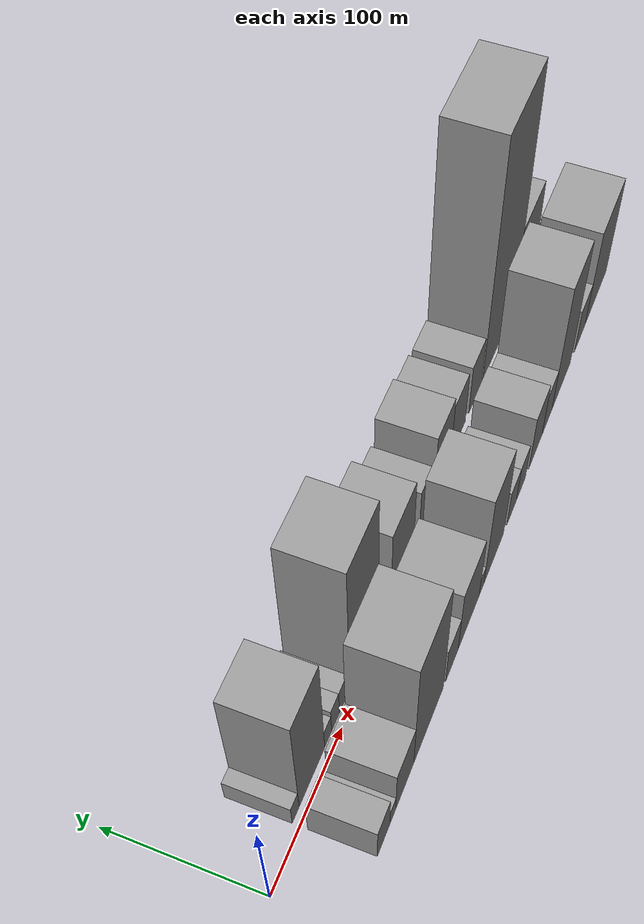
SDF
<sdf version="1.6">
 <world name="default">
  <scene>
   <sky><clouds><speed>12</speed></clouds></sky>
   <ambient>0.4 0.4 0.4 1</ambient>
   <background>0.7 0.7 0.7 1</background>
   <shadows>1</shadows>
  </scene>
  <gravity>0 0 -9.8066</gravity>
  <magnetic_field>6e-06 2.3e-05 -4.2e-05</magnetic_field>
  <physics default="0" name="default_physics" type="ode">
   <ode>
    <solver>
     <type>quick</type>
     <iters>10</iters>
     <sor>1.0</sor>
     <use_dynamic_moi_rescaling>0</use_dynamic_moi_rescaling>
    </solver>
    <constraints>
     <cfm>0</cfm>
     <erp>0.2</erp>
     <contact_max_correcting_vel>100</contact_max_correcting_vel>
     <contact_surface_layer>0.001</contact_surface_layer>
    </constraints>
   </ode>
   <max_step_size>0.004</max_step_size>
   <real_time_factor>1</real_time_factor>
   <real_time_update_rate>250</real_time_update_rate>
  </physics>
  <light name="sun" type="directional">
   <pose>0 0 10 0 0 0</pose>
   <diffuse>0.8 0.8 0.8 1</diffuse>
   <specular>0.2 0.2 0.2 1</specular>
   <attenuation>
    <range>1000</range>
    <constant>0.9</constant>
    <linear>0.01</linear>
    <quadratic>0.001</quadratic>
   </attenuation>
   <direction>-0.5 0.1 -0.9</direction>
  </light>
  <model name="building_1">
   <static>1</static>
   <pose>44.8258 24.5000 0 0.000000 0.000000 1.570796</pose>
   <link name="link">
    <pose>0 0 10.50 0 0 0</pose>
    <collision name="collision"><geometry><box><size>40.0000 9.6516 21.0000</size></box></geometry></collision>
    <visual name="visual">
     <cast_shadows>0</cast_shadows>
     <geometry><box><size>40.0000 9.6516 21.0000</size></box></geometry>
     <material>
      <script>
       <uri>model://grey_wall/materials/scripts</uri>
       <uri>model://grey_wall/materials/textures</uri>
       <name>vrc/grey_wall</name>
      </script>
     </material>
    </visual>
   </link>
  </model>
  <model name="building_2">
   <static>1</static>
   <pose>67.6785 24.5000 0 0.000000 0.000000 1.570796</pose>
   <link name="link">
    <pose>0 0 54.00 0 0 0</pose>
    <collision name="collision"><geometry><box><size>40.0000 36.0537 108.0000</size></box></geometry></collision>
    <visual name="visual">
     <cast_shadows>0</cast_shadows>
     <geometry><box><size>40.0000 36.0537 108.0000</size></box></geometry>
     <material>
      <script>
       <uri>model://grey_wall/materials/scripts</uri>
       <uri>model://grey_wall/materials/textures</uri>
       <name>vrc/grey_wall</name>
      </script>
     </material>
    </visual>
   </link>
  </model>
  <model name="building_3">
   <static>1</static>
   <pose>90.7869 24.5000 0 0.000000 0.000000 1.570796</pose>
   <link name="link">
    <pose>0 0 10.50 0 0 0</pose>
    <collision name="collision"><geometry><box><size>40.0000 10.1631 21.0000</size></box></geometry></collision>
    <visual name="visual">
     <cast_shadows>0</cast_shadows>
     <geometry><box><size>40.0000 10.1631 21.0000</size></box></geometry>
     <material>
      <script>
       <uri>model://grey_wall/materials/scripts</uri>
       <uri>model://grey_wall/materials/textures</uri>
       <name>vrc/grey_wall</name>
      </script>
     </material>
    </visual>
   </link>
  </model>
  <model name="building_4">
   <static>1</static>
   <pose>101.6792 24.5000 0 0.000000 0.000000 1.570796</pose>
   <link name="link">
    <pose>0 0 13.50 0 0 0</pose>
    <collision name="collision"><geometry><box><size>40.0000 11.6215 27.0000</size></box></geometry></collision>
    <visual name="visual">
     <cast_shadows>0</cast_shadows>
     <geometry><box><size>40.0000 11.6215 27.0000</size></box></geometry>
     <material>
      <script>
       <uri>model://grey_wall/materials/scripts</uri>
       <uri>model://grey_wall/materials/textures</uri>
       <name>vrc/grey_wall</name>
      </script>
     </material>
    </visual>
   </link>
  </model>
  <model name="building_5">
   <static>1</static>
   <pose>113.6233 24.5000 0 0.000000 0.000000 1.570796</pose>
   <link name="link">
    <pose>0 0 13.50 0 0 0</pose>
    <collision name="collision"><geometry><box><size>40.0000 12.2667 27.0000</size></box></geometry></collision>
    <visual name="visual">
     <cast_shadows>0</cast_shadows>
     <geometry><box><size>40.0000 12.2667 27.0000</size></box></geometry>
     <material>
      <script>
       <uri>model://grey_wall/materials/scripts</uri>
       <uri>model://grey_wall/materials/textures</uri>
       <name>vrc/grey_wall</name>
      </script>
     </material>
    </visual>
   </link>
  </model>
  <model name="building_6">
   <static>1</static>
   <pose>145.1281 24.5000 0 0.000000 0.000000 1.570796</pose>
   <link name="link">
    <pose>0 0 69.00 0 0 0</pose>
    <collision name="collision"><geometry><box><size>40.0000 44.7430 138.0000</size></box></geometry></collision>
    <visual name="visual">
     <cast_shadows>0</cast_shadows>
     <geometry><box><size>40.0000 44.7430 138.0000</size></box></geometry>
     <material>
      <script>
       <uri>model://grey_wall/materials/scripts</uri>
       <uri>model://grey_wall/materials/textures</uri>
       <name>vrc/grey_wall</name>
      </script>
     </material>
    </visual>
   </link>
  </model>
  <model name="building_7">
   <static>1</static>
   <pose>181.8102 24.5000 0 0.000000 0.000000 1.570796</pose>
   <link name="link">
    <pose>0 0 10.50 0 0 0</pose>
    <collision name="collision"><geometry><box><size>40.0000 8.6211 21.0000</size></box></geometry></collision>
    <visual name="visual">
     <cast_shadows>0</cast_shadows>
     <geometry><box><size>40.0000 8.6211 21.0000</size></box></geometry>
     <material>
      <script>
       <uri>model://grey_wall/materials/scripts</uri>
       <uri>model://grey_wall/materials/textures</uri>
       <name>vrc/grey_wall</name>
      </script>
     </material>
    </visual>
   </link>
  </model>
  <model name="building_8">
   <static>1</static>
   <pose>208.2457 24.5000 0 0.000000 0.000000 1.570796</pose>
   <link name="link">
    <pose>0 0 33.00 0 0 0</pose>
    <collision name="collision"><geometry><box><size>40.0000 38.2499 66.0000</size></box></geometry></collision>
    <visual name="visual">
     <cast_shadows>0</cast_shadows>
     <geometry><box><size>40.0000 38.2499 66.0000</size></box></geometry>
     <material>
      <script>
       <uri>model://grey_wall/materials/scripts</uri>
       <uri>model://grey_wall/materials/textures</uri>
       <name>vrc/grey_wall</name>
      </script>
     </material>
    </visual>
   </link>
  </model>
  <model name="building_9">
   <static>1</static>
   <pose>247.5432 24.5000 0 0.000000 0.000000 1.570796</pose>
   <link name="link">
    <pose>0 0 19.50 0 0 0</pose>
    <collision name="collision"><geometry><box><size>40.0000 20.3453 39.0000</size></box></geometry></collision>
    <visual name="visual">
     <cast_shadows>0</cast_shadows>
     <geometry><box><size>40.0000 20.3453 39.0000</size></box></geometry>
     <material>
      <script>
       <uri>model://grey_wall/materials/scripts</uri>
       <uri>model://grey_wall/materials/textures</uri>
       <name>vrc/grey_wall</name>
      </script>
     </material>
    </visual>
   </link>
  </model>
  <model name="building_10">
   <static>1</static>
   <pose>279.2989 24.5000 0 0.000000 0.000000 1.570796</pose>
   <link name="link">
    <pose>0 0 30.00 0 0 0</pose>
    <collision name="collision"><geometry><box><size>40.0000 31.1660 60.0000</size></box></geometry></collision>
    <visual name="visual">
     <cast_shadows>0</cast_shadows>
     <geometry><box><size>40.0000 31.1660 60.0000</size></box></geometry>
     <material>
      <script>
       <uri>model://grey_wall/materials/scripts</uri>
       <uri>model://grey_wall/materials/textures</uri>
       <name>vrc/grey_wall</name>
      </script>
     </material>
    </visual>
   </link>
  </model>
  <model name="building_11">
   <static>1</static>
   <pose>308.2212 24.5000 0 0.000000 0.000000 1.570796</pose>
   <link name="link">
    <pose>0 0 25.50 0 0 0</pose>
    <collision name="collision"><geometry><box><size>40.0000 26.6787 51.0000</size></box></geometry></collision>
    <visual name="visual">
     <cast_shadows>0</cast_shadows>
     <geometry><box><size>40.0000 26.6787 51.0000</size></box></geometry>
     <material>
      <script>
       <uri>model://grey_wall/materials/scripts</uri>
       <uri>model://grey_wall/materials/textures</uri>
       <name>vrc/grey_wall</name>
      </script>
     </material>
    </visual>
   </link>
  </model>
  <model name="building_12">
   <static>1</static>
   <pose>341.1226 24.5000 0 0.000000 0.000000 1.570796</pose>
   <link name="link">
    <pose>0 0 24.00 0 0 0</pose>
    <collision name="collision"><geometry><box><size>40.0000 25.1239 48.0000</size></box></geometry></collision>
    <visual name="visual">
     <cast_shadows>0</cast_shadows>
     <geometry><box><size>40.0000 25.1239 48.0000</size></box></geometry>
     <material>
      <script>
       <uri>model://grey_wall/materials/scripts</uri>
       <uri>model://grey_wall/materials/textures</uri>
       <name>vrc/grey_wall</name>
      </script>
     </material>
    </visual>
   </link>
  </model>
  <model name="building_13">
   <static>1</static>
   <pose>389.2262 24.5000 0 0.000000 0.000000 1.570796</pose>
   <link name="link">
    <pose>0 0 108.00 0 0 0</pose>
    <collision name="collision"><geometry><box><size>40.0000 65.0833 216.0000</size></box></geometry></collision>
    <visual name="visual">
     <cast_shadows>0</cast_shadows>
     <geometry><box><size>40.0000 65.0833 216.0000</size></box></geometry>
     <material>
      <script>
       <uri>model://grey_wall/materials/scripts</uri>
       <uri>model://grey_wall/materials/textures</uri>
       <name>vrc/grey_wall</name>
      </script>
     </material>
    </visual>
   </link>
  </model>
  <model name="building_14">
   <static>1</static>
   <pose>444.6479 24.5000 0 0.000000 0.000000 1.570796</pose>
   <link name="link">
    <pose>0 0 39.00 0 0 0</pose>
    <collision name="collision"><geometry><box><size>40.0000 45.7600 78.0000</size></box></geometry></collision>
    <visual name="visual">
     <cast_shadows>0</cast_shadows>
     <geometry><box><size>40.0000 45.7600 78.0000</size></box></geometry>
     <material>
      <script>
       <uri>model://grey_wall/materials/scripts</uri>
       <uri>model://grey_wall/materials/textures</uri>
       <name>vrc/grey_wall</name>
      </script>
     </material>
    </visual>
   </link>
  </model>
  <model name="building_15">
   <static>1</static>
   <pose>49.2387 -24.5000 0 0.000000 0.000000 1.570796</pose>
   <link name="link">
    <pose>0 0 18.00 0 0 0</pose>
    <collision name="collision"><geometry><box><size>40.0000 18.4774 36.0000</size></box></geometry></collision>
    <visual name="visual">
     <cast_shadows>0</cast_shadows>
     <geometry><box><size>40.0000 18.4774 36.0000</size></box></geometry>
     <material>
      <script>
       <uri>model://grey_wall/materials/scripts</uri>
       <uri>model://grey_wall/materials/textures</uri>
       <name>vrc/grey_wall</name>
      </script>
     </material>
    </visual>
   </link>
  </model>
  <model name="building_16">
   <static>1</static>
   <pose>62.8807 -24.5000 0 0.000000 0.000000 1.570796</pose>
   <link name="link">
    <pose>0 0 9.00 0 0 0</pose>
    <collision name="collision"><geometry><box><size>40.0000 8.8067 18.0000</size></box></geometry></collision>
    <visual name="visual">
     <cast_shadows>0</cast_shadows>
     <geometry><box><size>40.0000 8.8067 18.0000</size></box></geometry>
     <material>
      <script>
       <uri>model://grey_wall/materials/scripts</uri>
       <uri>model://grey_wall/materials/textures</uri>
       <name>vrc/grey_wall</name>
      </script>
     </material>
    </visual>
   </link>
  </model>
  <model name="building_17">
   <static>1</static>
   <pose>81.3269 -24.5000 0 0.000000 0.000000 1.570796</pose>
   <link name="link">
    <pose>0 0 24.00 0 0 0</pose>
    <collision name="collision"><geometry><box><size>40.0000 28.0857 48.0000</size></box></geometry></collision>
    <visual name="visual">
     <cast_shadows>0</cast_shadows>
     <geometry><box><size>40.0000 28.0857 48.0000</size></box></geometry>
     <material>
      <script>
       <uri>model://grey_wall/materials/scripts</uri>
       <uri>model://grey_wall/materials/textures</uri>
       <name>vrc/grey_wall</name>
      </script>
     </material>
    </visual>
   </link>
  </model>
  <model name="building_18">
   <static>1</static>
   <pose>119.2250 -24.5000 0 0.000000 0.000000 1.570796</pose>
   <link name="link">
    <pose>0 0 60.00 0 0 0</pose>
    <collision name="collision"><geometry><box><size>40.0000 47.7105 120.0000</size></box></geometry></collision>
    <visual name="visual">
     <cast_shadows>0</cast_shadows>
     <geometry><box><size>40.0000 47.7105 120.0000</size></box></geometry>
     <material>
      <script>
       <uri>model://grey_wall/materials/scripts</uri>
       <uri>model://grey_wall/materials/textures</uri>
       <name>vrc/grey_wall</name>
      </script>
     </material>
    </visual>
   </link>
  </model>
  <model name="building_19">
   <static>1</static>
   <pose>157.9146 -24.5000 0 0.000000 0.000000 1.570796</pose>
   <link name="link">
    <pose>0 0 19.50 0 0 0</pose>
    <collision name="collision"><geometry><box><size>40.0000 21.6686 39.0000</size></box></geometry></collision>
    <visual name="visual">
     <cast_shadows>0</cast_shadows>
     <geometry><box><size>40.0000 21.6686 39.0000</size></box></geometry>
     <material>
      <script>
       <uri>model://grey_wall/materials/scripts</uri>
       <uri>model://grey_wall/materials/textures</uri>
       <name>vrc/grey_wall</name>
      </script>
     </material>
    </visual>
   </link>
  </model>
  <model name="building_20">
   <static>1</static>
   <pose>187.3209 -24.5000 0 0.000000 0.000000 1.570796</pose>
   <link name="link">
    <pose>0 0 33.00 0 0 0</pose>
    <collision name="collision"><geometry><box><size>40.0000 37.1441 66.0000</size></box></geometry></collision>
    <visual name="visual">
     <cast_shadows>0</cast_shadows>
     <geometry><box><size>40.0000 37.1441 66.0000</size></box></geometry>
     <material>
      <script>
       <uri>model://grey_wall/materials/scripts</uri>
       <uri>model://grey_wall/materials/textures</uri>
       <name>vrc/grey_wall</name>
      </script>
     </material>
    </visual>
   </link>
  </model>
  <model name="building_21">
   <static>1</static>
   <pose>210.2502 -24.5000 0 0.000000 0.000000 1.570796</pose>
   <link name="link">
    <pose>0 0 10.50 0 0 0</pose>
    <collision name="collision"><geometry><box><size>40.0000 8.7144 21.0000</size></box></geometry></collision>
    <visual name="visual">
     <cast_shadows>0</cast_shadows>
     <geometry><box><size>40.0000 8.7144 21.0000</size></box></geometry>
     <material>
      <script>
       <uri>model://grey_wall/materials/scripts</uri>
       <uri>model://grey_wall/materials/textures</uri>
       <name>vrc/grey_wall</name>
      </script>
     </material>
    </visual>
   </link>
  </model>
  <model name="building_22">
   <static>1</static>
   <pose>232.9640 -24.5000 0 0.000000 0.000000 1.570796</pose>
   <link name="link">
    <pose>0 0 46.50 0 0 0</pose>
    <collision name="collision"><geometry><box><size>40.0000 36.7133 93.0000</size></box></geometry></collision>
    <visual name="visual">
     <cast_shadows>0</cast_shadows>
     <geometry><box><size>40.0000 36.7133 93.0000</size></box></geometry>
     <material>
      <script>
       <uri>model://grey_wall/materials/scripts</uri>
       <uri>model://grey_wall/materials/textures</uri>
       <name>vrc/grey_wall</name>
      </script>
     </material>
    </visual>
   </link>
  </model>
  <model name="building_23">
   <static>1</static>
   <pose>267.5845 -24.5000 0 0.000000 0.000000 1.570796</pose>
   <link name="link">
    <pose>0 0 18.00 0 0 0</pose>
    <collision name="collision"><geometry><box><size>40.0000 18.5277 36.0000</size></box></geometry></collision>
    <visual name="visual">
     <cast_shadows>0</cast_shadows>
     <geometry><box><size>40.0000 18.5277 36.0000</size></box></geometry>
     <material>
      <script>
       <uri>model://grey_wall/materials/scripts</uri>
       <uri>model://grey_wall/materials/textures</uri>
       <name>vrc/grey_wall</name>
      </script>
     </material>
    </visual>
   </link>
  </model>
  <model name="building_24">
   <static>1</static>
   <pose>285.8888 -24.5000 0 0.000000 0.000000 1.570796</pose>
   <link name="link">
    <pose>0 0 18.00 0 0 0</pose>
    <collision name="collision"><geometry><box><size>40.0000 18.0808 36.0000</size></box></geometry></collision>
    <visual name="visual">
     <cast_shadows>0</cast_shadows>
     <geometry><box><size>40.0000 18.0808 36.0000</size></box></geometry>
     <material>
      <script>
       <uri>model://grey_wall/materials/scripts</uri>
       <uri>model://grey_wall/materials/textures</uri>
       <name>vrc/grey_wall</name>
      </script>
     </material>
    </visual>
   </link>
  </model>
  <model name="building_25">
   <static>1</static>
   <pose>315.5839 -24.5000 0 0.000000 0.000000 1.570796</pose>
   <link name="link">
    <pose>0 0 27.00 0 0 0</pose>
    <collision name="collision"><geometry><box><size>40.0000 27.3094 54.0000</size></box></geometry></collision>
    <visual name="visual">
     <cast_shadows>0</cast_shadows>
     <geometry><box><size>40.0000 27.3094 54.0000</size></box></geometry>
     <material>
      <script>
       <uri>model://grey_wall/materials/scripts</uri>
       <uri>model://grey_wall/materials/textures</uri>
       <name>vrc/grey_wall</name>
      </script>
     </material>
    </visual>
   </link>
  </model>
  <model name="building_26">
   <static>1</static>
   <pose>339.8416 -24.5000 0 0.000000 0.000000 1.570796</pose>
   <link name="link">
    <pose>0 0 21.00 0 0 0</pose>
    <collision name="collision"><geometry><box><size>40.0000 21.2059 42.0000</size></box></geometry></collision>
    <visual name="visual">
     <cast_shadows>0</cast_shadows>
     <geometry><box><size>40.0000 21.2059 42.0000</size></box></geometry>
     <material>
      <script>
       <uri>model://grey_wall/materials/scripts</uri>
       <uri>model://grey_wall/materials/textures</uri>
       <name>vrc/grey_wall</name>
      </script>
     </material>
    </visual>
   </link>
  </model>
  <model name="building_27">
   <static>1</static>
   <pose>370.6356 -24.5000 0 0.000000 0.000000 1.570796</pose>
   <link name="link">
    <pose>0 0 60.00 0 0 0</pose>
    <collision name="collision"><geometry><box><size>40.0000 40.3822 120.0000</size></box></geometry></collision>
    <visual name="visual">
     <cast_shadows>0</cast_shadows>
     <geometry><box><size>40.0000 40.3822 120.0000</size></box></geometry>
     <material>
      <script>
       <uri>model://grey_wall/materials/scripts</uri>
       <uri>model://grey_wall/materials/textures</uri>
       <name>vrc/grey_wall</name>
      </script>
     </material>
    </visual>
   </link>
  </model>
  <model name="building_28">
   <static>1</static>
   <pose>413.0892 -24.5000 0 0.000000 0.000000 1.570796</pose>
   <link name="link">
    <pose>0 0 21.00 0 0 0</pose>
    <collision name="collision"><geometry><box><size>40.0000 24.5249 42.0000</size></box></geometry></collision>
    <visual name="visual">
     <cast_shadows>0</cast_shadows>
     <geometry><box><size>40.0000 24.5249 42.0000</size></box></geometry>
     <material>
      <script>
       <uri>model://grey_wall/materials/scripts</uri>
       <uri>model://grey_wall/materials/textures</uri>
       <name>vrc/grey_wall</name>
      </script>
     </material>
    </visual>
   </link>
  </model>
  <model name="building_29">
   <static>1</static>
   <pose>450.8344 -24.5000 0 0.000000 0.000000 1.570796</pose>
   <link name="link">
    <pose>0 0 45.00 0 0 0</pose>
    <collision name="collision"><geometry><box><size>40.0000 50.9655 90.0000</size></box></geometry></collision>
    <visual name="visual">
     <cast_shadows>0</cast_shadows>
     <geometry><box><size>40.0000 50.9655 90.0000</size></box></geometry>
     <material>
      <script>
       <uri>model://grey_wall/materials/scripts</uri>
       <uri>model://grey_wall/materials/textures</uri>
       <name>vrc/grey_wall</name>
      </script>
     </material>
    </visual>
   </link>
  </model>
 </world>
</sdf>
